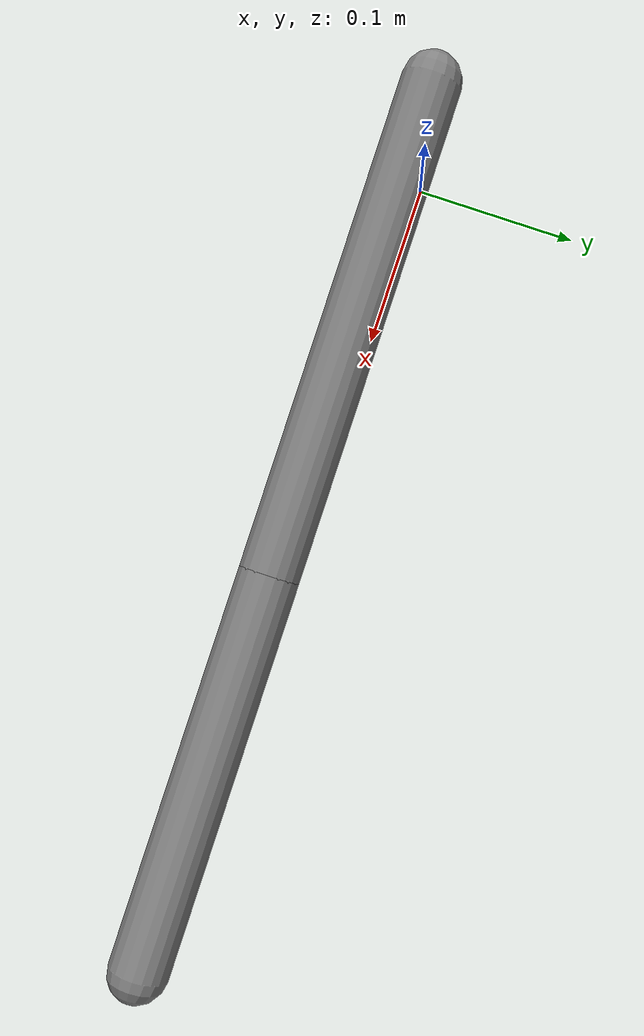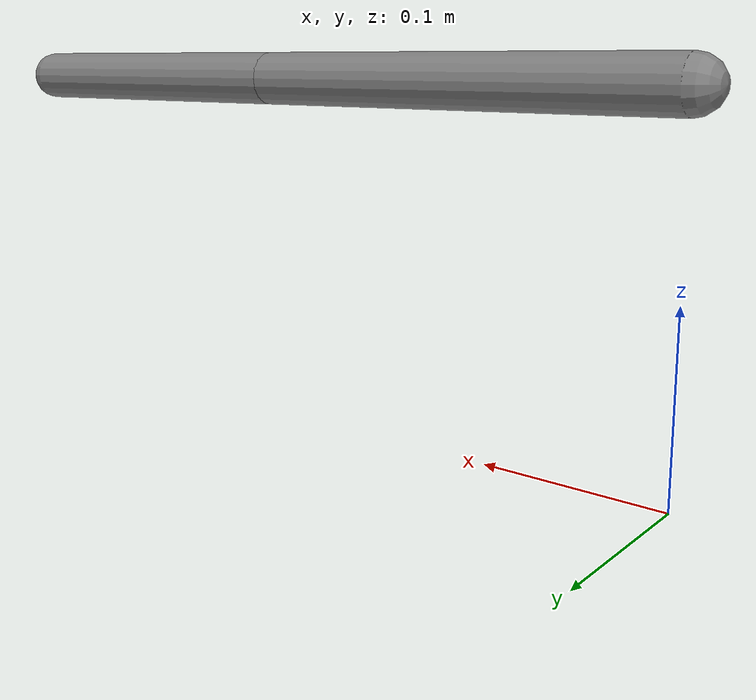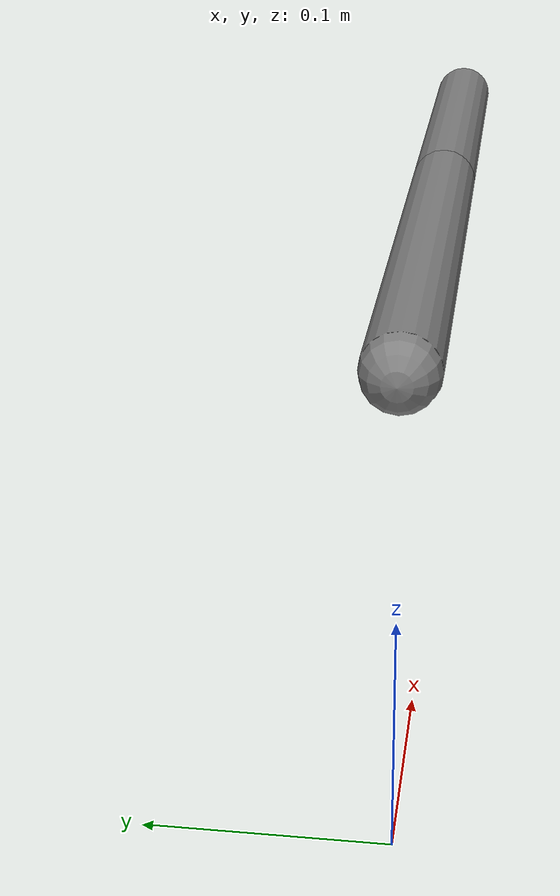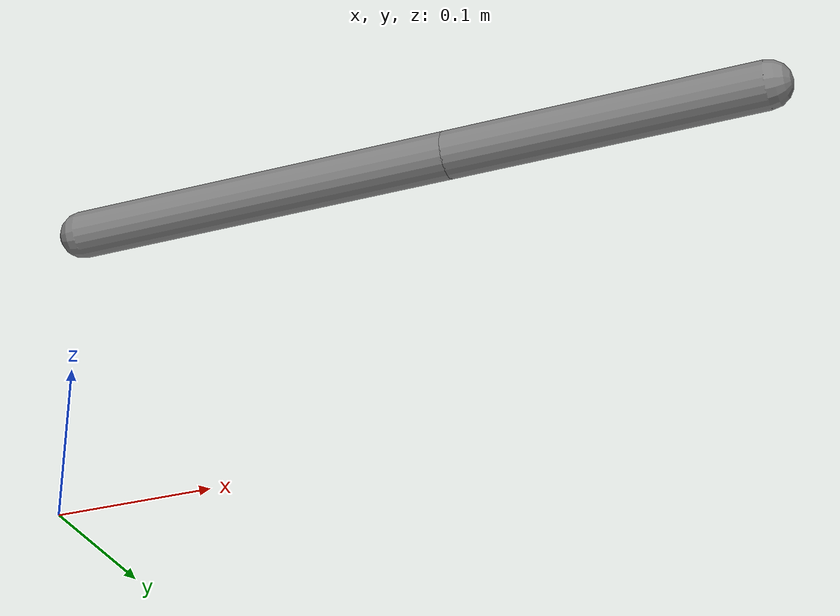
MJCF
<mujoco model="atlas_two_link">
  <compiler angle="radian" autolimits="true"/>
  <option timestep="0.002" gravity="0 0 0" integrator="implicitfast"/>
  <default>
    <joint type="hinge" axis="0 0 1" range="-2.5 2.5" damping="0.02"/>
    <geom type="capsule" size="0.015" contype="0" conaffinity="0"/>
  </default>
  <worldbody>
    <body name="upper" pos="0 0 0.2">
      <joint name="shoulder" actuatorfrcrange="-6 6"/>
      <geom fromto="0 0 0 0.25 0 0" mass="0.4"/>
      <body name="forearm" pos="0.25 0 0">
        <joint name="elbow" actuatorfrcrange="-1.2 1.2"/>
        <geom fromto="0 0 0 0.2 0 0" mass="0.3"/>
        <site name="tip" pos="0.2 0 0" size="0.005"/>
      </body>
    </body>
  </worldbody>
  <actuator>
    <pid name="shoulder_servo" joint="shoulder" input="pos vel"
         kp="20" kv="2" posrange="-1.8 1.8" velrange="-1 1"
         forcerange="-4 4"/>
    <motor name="elbow_motor" joint="elbow" gear="2"
           ctrlrange="-1 1" forcerange="-0.8 0.8"/>
  </actuator>
</mujoco>
